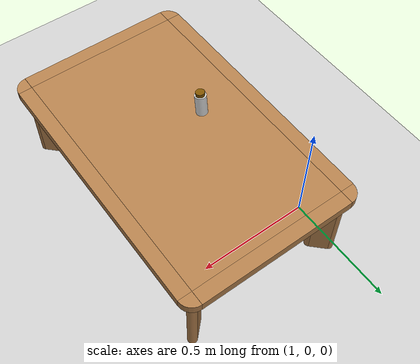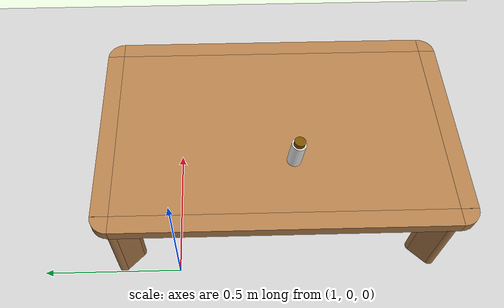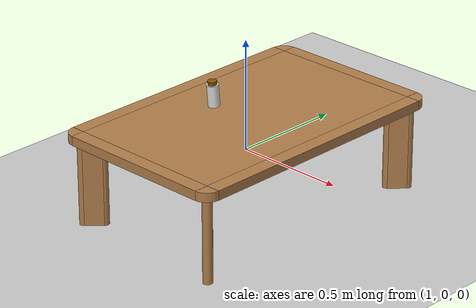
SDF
<sdf version="1.6">
 <world name="empty_world_with_small_objects">
  <light name="sun" type="directional">
   <pose>0 0 10 0 -0 0</pose>
   <diffuse>0.8 0.8 0.8 1</diffuse>
   <specular>0.2 0.2 0.2 1</specular>
   <attenuation>
    <range>1000</range>
    <constant>0.9</constant>
    <linear>0.01</linear>
    <quadratic>0.001</quadratic>
   </attenuation>
   <direction>-0.5 0.1 -0.9</direction>
  </light>
  <scene><ambient>0.4 0.4 0.4 1</ambient><background>0.7 0.7 0.7 1</background><shadows>1</shadows></scene>
  <physics name="default_physics" default="0" type="ode">
   <max_step_size>0.001</max_step_size>
   <real_time_factor>1</real_time_factor>
   <real_time_update_rate>1000</real_time_update_rate>
  </physics>
  <model name="ground_plane">
   <static>1</static>
   <link name="link">
    <collision name="collision">
     <geometry><plane><normal>0 0 1</normal><size>100 100</size></plane></geometry>
     <surface><friction><ode><mu>100</mu><mu2>50</mu2></ode></friction></surface>
    </collision>
    <visual name="visual">
     <cast_shadows>0</cast_shadows>
     <geometry><plane><normal>0 0 1</normal><size>100 100</size></plane></geometry>
     <material>
      <script><uri>file://media/materials/scripts/gazebo.material</uri><name>Gazebo/Grey</name></script>
     </material>
    </visual>
    <velocity_decay><linear>0</linear><angular>0</angular></velocity_decay>
   </link>
  </model>
  <spherical_coordinates>
   <surface_model>EARTH_WGS84</surface_model>
   <latitude_deg>0</latitude_deg>
   <longitude_deg>0</longitude_deg>
   <elevation>0</elevation>
   <heading_deg>0</heading_deg>
  </spherical_coordinates>
  <model name="small_bottle">
   <link name="link">
    <inertial>
     <mass>0.05</mass>
     <inertia><ixx>0.00058</ixx><ixy>0</ixy><ixz>0</ixz><iyy>0.00058</iyy><iyz>0</iyz><izz>0.00016</izz></inertia>
    </inertial>
    <visual name="top">
     <pose>0 0 0.0555 0 -0 0</pose>
     <geometry><cylinder><radius>0.019</radius><length>0.016</length></cylinder></geometry>
     <material>
      <ambient>1 0.647 0 1</ambient>
      <diffuse>0.5 0.3235 0 1</diffuse>
      <specular>0.1 0.1 0.1 1</specular>
      <emissive>0 0 0 0</emissive>
     </material>
    </visual>
    <collision name="collision_top">
     <pose>0 0 0.0555 0 -0 0</pose>
     <geometry><cylinder><radius>0.019</radius><length>0.016</length></cylinder></geometry>
     <surface>
      <bounce><restitution_coefficient>0.2</restitution_coefficient><threshold>0</threshold></bounce>
      <contact><ode><kp>10000</kp><max_vel>10</max_vel></ode></contact>
     </surface>
    </collision>
    <visual name="bottom">
     <geometry><cylinder><radius>0.0245</radius><length>0.095</length></cylinder></geometry>
     <material>
      <script><uri>model://base_materials/color/scripts</uri><name>hsr_color/white</name></script>
     </material>
    </visual>
    <collision name="collision_bottom">
     <geometry><cylinder><radius>0.0245</radius><length>0.095</length></cylinder></geometry>
     <surface>
      <bounce><restitution_coefficient>0.2</restitution_coefficient><threshold>0</threshold></bounce>
      <contact><ode><kp>100000</kp><max_vel>10</max_vel></ode></contact>
     </surface>
    </collision>
    <velocity_decay><linear>0</linear><angular>0</angular></velocity_decay>
   </link>
   <static>0</static>
   <pose>1.22175 -0.411459 0.452032 -0.010299 0.100152 -1.55206</pose>
  </model>
  <gravity>0 0 -9.8</gravity>
  <magnetic_field>6e-06 2.3e-05 -4.2e-05</magnetic_field>
  <atmosphere type="adiabatic"/>
  <model name="kitchen_lowtable">
   <link name="link">
    <inertial>
     <mass>10</mass>
     <inertia><ixx>1</ixx><ixy>0</ixy><ixz>0</ixz><iyy>1</iyy><iyz>0</iyz><izz>1</izz></inertia>
    </inertial>
    <visual name="center_board">
     <pose>0 0 0.38 0 -0 0</pose>
     <geometry><box><size>0.68 1.13 0.04</size></box></geometry>
     <material>
      <script><uri>model://base_materials/wood/scripts/wood.material</uri><name>base_materials/wood</name></script>
     </material>
    </visual>
    <collision name="collision_center_board">
     <pose>0 0 0.38 0 -0 0</pose>
     <geometry><box><size>0.68 1.13 0.04</size></box></geometry>
    </collision>
    <visual name="front_board">
     <pose>0.37 0 0.38 0 -0 0</pose>
     <geometry><box><size>0.06 1.13 0.04</size></box></geometry>
     <material>
      <script><uri>model://base_materials/wood/scripts/wood.material</uri><name>base_materials/wood</name></script>
     </material>
    </visual>
    <collision name="collision_front_board">
     <pose>0.37 0 0.38 0 -0 0</pose>
     <geometry><box><size>0.06 1.13 0.04</size></box></geometry>
    </collision>
    <visual name="back_board">
     <pose>-0.37 0 0.38 0 -0 0</pose>
     <geometry><box><size>0.06 1.13 0.04</size></box></geometry>
     <material>
      <script><uri>model://base_materials/wood/scripts/wood.material</uri><name>base_materials/wood</name></script>
     </material>
    </visual>
    <collision name="collision_back_board">
     <pose>-0.37 0 0.38 0 -0 0</pose>
     <geometry><box><size>0.06 1.13 0.04</size></box></geometry>
    </collision>
    <visual name="right_board">
     <pose>0 0.595 0.38 0 -0 0</pose>
     <geometry><box><size>0.68 0.06 0.04</size></box></geometry>
     <material>
      <script><uri>model://base_materials/wood/scripts/wood.material</uri><name>base_materials/wood</name></script>
     </material>
    </visual>
    <collision name="collision_right_board">
     <pose>0 0.595 0.38 0 -0 0</pose>
     <geometry><box><size>0.68 0.06 0.04</size></box></geometry>
    </collision>
    <visual name="left_board">
     <pose>0 -0.595 0.38 0 -0 0</pose>
     <geometry><box><size>0.68 0.06 0.04</size></box></geometry>
     <material>
      <script><uri>model://base_materials/wood/scripts/wood.material</uri><name>base_materials/wood</name></script>
     </material>
    </visual>
    <collision name="collision_left_board">
     <pose>0 -0.595 0.38 0 -0 0</pose>
     <geometry><box><size>0.68 0.06 0.04</size></box></geometry>
    </collision>
    <visual name="front_right_corner_board">
     <pose>0.34 0.565 0.38 0 -0 0</pose>
     <geometry><cylinder><radius>0.06</radius><length>0.039</length></cylinder></geometry>
     <material>
      <script><uri>model://base_materials/wood/scripts/wood.material</uri><name>base_materials/wood</name></script>
     </material>
    </visual>
    <collision name="collision_front_right_corner_board">
     <pose>0.34 0.565 0.38 0 -0 0</pose>
     <geometry><cylinder><radius>0.06</radius><length>0.039</length></cylinder></geometry>
    </collision>
    <visual name="front_left_corner_board">
     <pose>0.34 -0.565 0.38 0 -0 0</pose>
     <geometry><cylinder><radius>0.06</radius><length>0.039</length></cylinder></geometry>
     <material>
      <script><uri>model://base_materials/wood/scripts/wood.material</uri><name>base_materials/wood</name></script>
     </material>
    </visual>
    <collision name="collision_front_left_corner_board">
     <pose>0.34 -0.565 0.38 0 -0 0</pose>
     <geometry><cylinder><radius>0.06</radius><length>0.039</length></cylinder></geometry>
    </collision>
    <visual name="front_back_right_corner_board">
     <pose>-0.34 0.565 0.38 0 -0 0</pose>
     <geometry><cylinder><radius>0.06</radius><length>0.039</length></cylinder></geometry>
     <material>
      <script><uri>model://base_materials/wood/scripts/wood.material</uri><name>base_materials/wood</name></script>
     </material>
    </visual>
    <collision name="collision_back_right_corner_board">
     <pose>-0.34 0.565 0.38 0 -0 0</pose>
     <geometry><cylinder><radius>0.06</radius><length>0.039</length></cylinder></geometry>
    </collision>
    <visual name="front_back_left_corner_board">
     <pose>-0.34 -0.565 0.38 0 -0 0</pose>
     <geometry><cylinder><radius>0.06</radius><length>0.039</length></cylinder></geometry>
     <material>
      <script><uri>model://base_materials/wood/scripts/wood.material</uri><name>base_materials/wood</name></script>
     </material>
    </visual>
    <collision name="collision_back_left_corner_board">
     <pose>-0.34 -0.565 0.38 0 -0 0</pose>
     <geometry><cylinder><radius>0.06</radius><length>0.039</length></cylinder></geometry>
    </collision>
    <visual name="front_left_corner_frame1">
     <pose>0.345858 -0.57086 0.18 0 -0 0</pose>
     <geometry><cylinder><radius>0.02</radius><length>0.36</length></cylinder></geometry>
     <material>
      <script><uri>model://base_materials/wood/scripts/wood.material</uri><name>base_materials/wood</name></script>
     </material>
    </visual>
    <collision name="collision_front_left_corner_frame1">
     <pose>0.345858 -0.57086 0.18 0 -0 0</pose>
     <geometry><cylinder><radius>0.02</radius><length>0.36</length></cylinder></geometry>
    </collision>
    <visual name="front_left_corner_frame2">
     <pose>0.317574 -0.54257 0.18 0 -0 0.7854</pose>
     <geometry><box><size>0.04 0.08 0.36</size></box></geometry>
     <material>
      <script><uri>model://base_materials/wood/scripts/wood.material</uri><name>base_materials/wood</name></script>
     </material>
    </visual>
    <collision name="collision_front_left_corner_frame2">
     <pose>0.317574 -0.54257 0.18 0 -0 0.7854</pose>
     <geometry><box><size>0.04 0.08 0.36</size></box></geometry>
    </collision>
    <visual name="front_left_corner_frame3">
     <pose>0.289289 -0.51429 0.18 0 -0 0</pose>
     <geometry><cylinder><radius>0.02</radius><length>0.36</length></cylinder></geometry>
     <material>
      <script><uri>model://base_materials/wood/scripts/wood.material</uri><name>base_materials/wood</name></script>
     </material>
    </visual>
    <collision name="collision_front_left_corner_frame3">
     <pose>0.289289 -0.51429 0.18 0 -0 0</pose>
     <geometry><cylinder><radius>0.02</radius><length>0.36</length></cylinder></geometry>
    </collision>
    <visual name="front_right_corner_frame1">
     <pose>0.345858 0.57086 0.18 0 -0 0</pose>
     <geometry><cylinder><radius>0.02</radius><length>0.36</length></cylinder></geometry>
     <material>
      <script><uri>model://base_materials/wood/scripts/wood.material</uri><name>base_materials/wood</name></script>
     </material>
    </visual>
    <collision name="collision_front_right_corner_frame1">
     <pose>0.345858 0.57086 0.18 0 -0 0</pose>
     <geometry><cylinder><radius>0.02</radius><length>0.36</length></cylinder></geometry>
    </collision>
    <visual name="front_right_corner_frame2">
     <pose>0.317574 0.54257 0.18 0 0 -0.7854</pose>
     <geometry><box><size>0.04 0.08 0.36</size></box></geometry>
     <material>
      <script><uri>model://base_materials/wood/scripts/wood.material</uri><name>base_materials/wood</name></script>
     </material>
    </visual>
    <collision name="collision_front_right_corner_frame2">
     <pose>0.317574 0.54257 0.18 0 0 -0.7854</pose>
     <geometry><box><size>0.04 0.08 0.36</size></box></geometry>
    </collision>
    <visual name="front_right_corner_frame3">
     <pose>0.289289 0.51429 0.18 0 -0 0</pose>
     <geometry><cylinder><radius>0.02</radius><length>0.36</length></cylinder></geometry>
     <material>
      <script><uri>model://base_materials/wood/scripts/wood.material</uri><name>base_materials/wood</name></script>
     </material>
    </visual>
    <collision name="collision_front_right_corner_frame3">
     <pose>0.289289 0.51429 0.18 0 -0 0</pose>
     <geometry><cylinder><radius>0.02</radius><length>0.36</length></cylinder></geometry>
    </collision>
    <visual name="back_left_corner_frame1">
     <pose>-0.345858 -0.57086 0.18 0 -0 0</pose>
     <geometry><cylinder><radius>0.02</radius><length>0.36</length></cylinder></geometry>
     <material>
      <script><uri>model://base_materials/wood/scripts/wood.material</uri><name>base_materials/wood</name></script>
     </material>
    </visual>
    <collision name="collision_back_left_corner_frame1">
     <pose>-0.345858 -0.57086 0.18 0 -0 0</pose>
     <geometry><cylinder><radius>0.02</radius><length>0.36</length></cylinder></geometry>
    </collision>
    <visual name="back_left_corner_frame2">
     <pose>-0.317574 -0.54257 0.18 0 0 -0.7854</pose>
     <geometry><box><size>0.04 0.08 0.36</size></box></geometry>
     <material>
      <script><uri>model://base_materials/wood/scripts/wood.material</uri><name>base_materials/wood</name></script>
     </material>
    </visual>
    <collision name="collision_back_left_corner_frame2">
     <pose>-0.317574 -0.54257 0.18 0 0 -0.7854</pose>
     <geometry><box><size>0.04 0.08 0.36</size></box></geometry>
    </collision>
    <visual name="back_left_corner_frame3">
     <pose>-0.289289 -0.51429 0.18 0 -0 0</pose>
     <geometry><cylinder><radius>0.02</radius><length>0.36</length></cylinder></geometry>
     <material>
      <script><uri>model://base_materials/wood/scripts/wood.material</uri><name>base_materials/wood</name></script>
     </material>
    </visual>
    <collision name="collision_back_left_corner_frame3">
     <pose>-0.289289 -0.51429 0.18 0 -0 0</pose>
     <geometry><cylinder><radius>0.02</radius><length>0.36</length></cylinder></geometry>
    </collision>
    <visual name="back_right_corner_frame1">
     <pose>-0.345858 0.57086 0.18 0 -0 0</pose>
     <geometry><cylinder><radius>0.02</radius><length>0.36</length></cylinder></geometry>
     <material>
      <script><uri>model://base_materials/wood/scripts/wood.material</uri><name>base_materials/wood</name></script>
     </material>
    </visual>
    <collision name="collision_back_right_corner_frame1">
     <pose>-0.345858 0.57086 0.18 0 -0 0</pose>
     <geometry><cylinder><radius>0.02</radius><length>0.36</length></cylinder></geometry>
    </collision>
    <visual name="back_right_corner_frame2">
     <pose>-0.317574 0.54257 0.18 0 -0 0.7854</pose>
     <geometry><box><size>0.04 0.08 0.36</size></box></geometry>
     <material>
      <script><uri>model://base_materials/wood/scripts/wood.material</uri><name>base_materials/wood</name></script>
     </material>
    </visual>
    <collision name="collision_back_right_corner_frame2">
     <pose>-0.317574 0.54257 0.18 0 -0 0.7854</pose>
     <geometry><box><size>0.04 0.08 0.36</size></box></geometry>
    </collision>
    <visual name="back_right_corner_frame3">
     <pose>-0.289289 0.51429 0.18 0 -0 0</pose>
     <geometry><cylinder><radius>0.02</radius><length>0.36</length></cylinder></geometry>
     <material>
      <script><uri>model://base_materials/wood/scripts/wood.material</uri><name>base_materials/wood</name></script>
     </material>
    </visual>
    <collision name="collision_back_right_corner_frame3">
     <pose>-0.289289 0.51429 0.18 0 -0 0</pose>
     <geometry><cylinder><radius>0.02</radius><length>0.36</length></cylinder></geometry>
    </collision>
    <velocity_decay><linear>0</linear><angular>0</angular></velocity_decay>
   </link>
   <static>1</static>
   <pose>1.36843 -0.363255 0 0 -0 0</pose>
  </model>
 </world>
</sdf>
